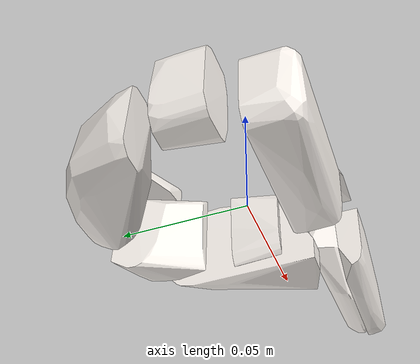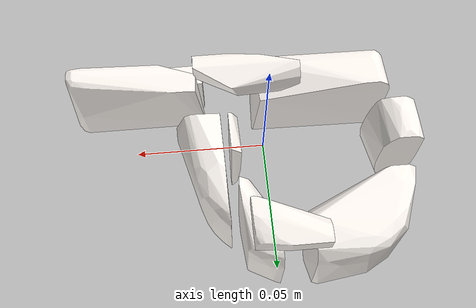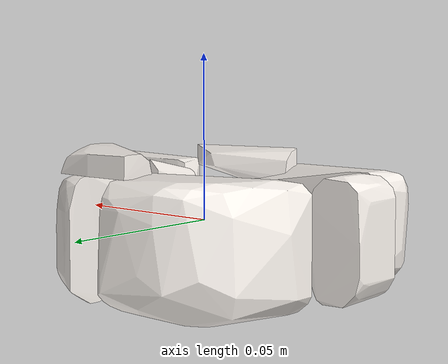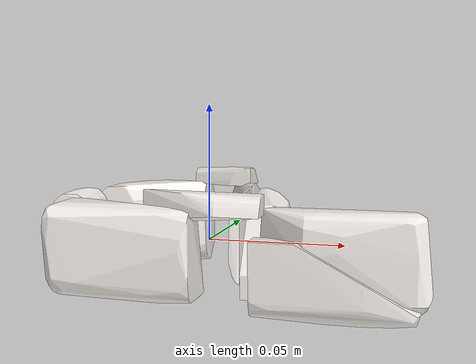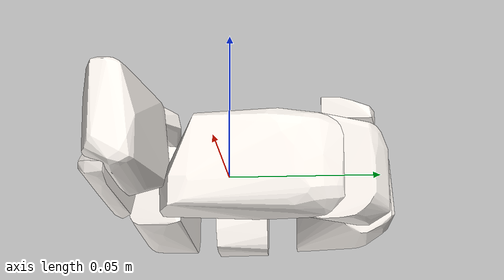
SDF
<?xml version='1.0' encoding='UTF-8'?>
<!-- This SDF was autogenerated by obj_to_drake_sdf.py -->
<sdf version="1.7">
  <model name="P_shape_texture">
    <link name="P_shape_texture">
      <inertial>
        <pose>0 0 0 0 0 0</pose>
        <mass>0.05</mass>
        <inertia>
          <ixx>5.5597613e-05</ixx>
          <iyy>7.860341e-05</iyy>
          <izz>0.00011751778</izz>
          <ixy>1.5313936e-05</ixy>
          <ixz>6.9669251e-07</ixz>
          <iyz>-8.0254896e-07</iyz>
        </inertia>
      </inertial>
      <visual name="convex_0">
        <pose>0 0 0 0 0 0</pose>
        <geometry>
          <mesh>
            <uri>P_shape_texture_convex_0.obj</uri>
          </mesh>
        </geometry>
        <material>
          <diffuse>0.9803921568627451 0.9568627450980393 0.9333333333333333 1</diffuse>
        </material>
      </visual>
      <collision name="convex_0_volume">
        <pose>0 0 0 0 0 0</pose>
        <geometry>
          <mesh>
            <uri>P_shape_texture_convex_0.obj</uri>
          </mesh>
        </geometry>
        <drake:proximity_properties xmlns:drake="uri:drake">
          <drake:compliant_hydroelastic/>
          <drake:hydroelastic_modulus> 3.0e7 </drake:hydroelastic_modulus>
          <drake:mesh_resolution_hint> 0.02 </drake:mesh_resolution_hint>
          <drake:hunt_crossley_dissipation>10</drake:hunt_crossley_dissipation>
          <drake:mu_dynamic>0.3</drake:mu_dynamic>
        </drake:proximity_properties>
      </collision>
      <visual name="convex_1">
        <pose>0 0 0 0 0 0</pose>
        <geometry>
          <mesh>
            <uri>P_shape_texture_convex_1.obj</uri>
          </mesh>
        </geometry>
        <material>
          <diffuse>0.9803921568627451 0.9568627450980393 0.9333333333333333 1</diffuse>
        </material>
      </visual>
      <collision name="convex_1_volume">
        <pose>0 0 0 0 0 0</pose>
        <geometry>
          <mesh>
            <uri>P_shape_texture_convex_1.obj</uri>
          </mesh>
        </geometry>
        <drake:proximity_properties xmlns:drake="uri:drake">
          <drake:compliant_hydroelastic/>
          <drake:hydroelastic_modulus> 3.0e7 </drake:hydroelastic_modulus>
          <drake:mesh_resolution_hint> 0.02 </drake:mesh_resolution_hint>
          <drake:hunt_crossley_dissipation>10</drake:hunt_crossley_dissipation>
          <drake:mu_dynamic>0.3</drake:mu_dynamic>
        </drake:proximity_properties>
      </collision>
      <visual name="convex_2">
        <pose>0 0 0 0 0 0</pose>
        <geometry>
          <mesh>
            <uri>P_shape_texture_convex_2.obj</uri>
          </mesh>
        </geometry>
        <material>
          <diffuse>0.9803921568627451 0.9568627450980393 0.9333333333333333 1</diffuse>
        </material>
      </visual>
      <collision name="convex_2_volume">
        <pose>0 0 0 0 0 0</pose>
        <geometry>
          <mesh>
            <uri>P_shape_texture_convex_2.obj</uri>
          </mesh>
        </geometry>
        <drake:proximity_properties xmlns:drake="uri:drake">
          <drake:compliant_hydroelastic/>
          <drake:hydroelastic_modulus> 3.0e7 </drake:hydroelastic_modulus>
          <drake:mesh_resolution_hint> 0.02 </drake:mesh_resolution_hint>
          <drake:hunt_crossley_dissipation>10</drake:hunt_crossley_dissipation>
          <drake:mu_dynamic>0.3</drake:mu_dynamic>
        </drake:proximity_properties>
      </collision>
      <visual name="convex_3">
        <pose>0 0 0 0 0 0</pose>
        <geometry>
          <mesh>
            <uri>P_shape_texture_convex_3.obj</uri>
          </mesh>
        </geometry>
        <material>
          <diffuse>0.9803921568627451 0.9568627450980393 0.9333333333333333 1</diffuse>
        </material>
      </visual>
      <collision name="convex_3_volume">
        <pose>0 0 0 0 0 0</pose>
        <geometry>
          <mesh>
            <uri>P_shape_texture_convex_3.obj</uri>
          </mesh>
        </geometry>
        <drake:proximity_properties xmlns:drake="uri:drake">
          <drake:compliant_hydroelastic/>
          <drake:hydroelastic_modulus> 3.0e7 </drake:hydroelastic_modulus>
          <drake:mesh_resolution_hint> 0.02 </drake:mesh_resolution_hint>
          <drake:hunt_crossley_dissipation>10</drake:hunt_crossley_dissipation>
          <drake:mu_dynamic>0.3</drake:mu_dynamic>
        </drake:proximity_properties>
      </collision>
      <visual name="convex_4">
        <pose>0 0 0 0 0 0</pose>
        <geometry>
          <mesh>
            <uri>P_shape_texture_convex_4.obj</uri>
          </mesh>
        </geometry>
        <material>
          <diffuse>0.9803921568627451 0.9568627450980393 0.9333333333333333 1</diffuse>
        </material>
      </visual>
      <collision name="convex_4_volume">
        <pose>0 0 0 0 0 0</pose>
        <geometry>
          <mesh>
            <uri>P_shape_texture_convex_4.obj</uri>
          </mesh>
        </geometry>
        <drake:proximity_properties xmlns:drake="uri:drake">
          <drake:compliant_hydroelastic/>
          <drake:hydroelastic_modulus> 3.0e7 </drake:hydroelastic_modulus>
          <drake:mesh_resolution_hint> 0.02 </drake:mesh_resolution_hint>
          <drake:hunt_crossley_dissipation>10</drake:hunt_crossley_dissipation>
          <drake:mu_dynamic>0.3</drake:mu_dynamic>
        </drake:proximity_properties>
      </collision>
      <visual name="convex_5">
        <pose>0 0 0 0 0 0</pose>
        <geometry>
          <mesh>
            <uri>P_shape_texture_convex_5.obj</uri>
          </mesh>
        </geometry>
        <material>
          <diffuse>0.9803921568627451 0.9568627450980393 0.9333333333333333 1</diffuse>
        </material>
      </visual>
      <collision name="convex_5_volume">
        <pose>0 0 0 0 0 0</pose>
        <geometry>
          <mesh>
            <uri>P_shape_texture_convex_5.obj</uri>
          </mesh>
        </geometry>
        <drake:proximity_properties xmlns:drake="uri:drake">
          <drake:compliant_hydroelastic/>
          <drake:hydroelastic_modulus> 3.0e7 </drake:hydroelastic_modulus>
          <drake:mesh_resolution_hint> 0.02 </drake:mesh_resolution_hint>
          <drake:hunt_crossley_dissipation>10</drake:hunt_crossley_dissipation>
          <drake:mu_dynamic>0.3</drake:mu_dynamic>
        </drake:proximity_properties>
      </collision>
      <visual name="convex_6">
        <pose>0 0 0 0 0 0</pose>
        <geometry>
          <mesh>
            <uri>P_shape_texture_convex_6.obj</uri>
          </mesh>
        </geometry>
        <material>
          <diffuse>0.9803921568627451 0.9568627450980393 0.9333333333333333 1</diffuse>
        </material>
      </visual>
      <collision name="convex_6_volume">
        <pose>0 0 0 0 0 0</pose>
        <geometry>
          <mesh>
            <uri>P_shape_texture_convex_6.obj</uri>
          </mesh>
        </geometry>
        <drake:proximity_properties xmlns:drake="uri:drake">
          <drake:compliant_hydroelastic/>
          <drake:hydroelastic_modulus> 3.0e7 </drake:hydroelastic_modulus>
          <drake:mesh_resolution_hint> 0.02 </drake:mesh_resolution_hint>
          <drake:hunt_crossley_dissipation>10</drake:hunt_crossley_dissipation>
          <drake:mu_dynamic>0.3</drake:mu_dynamic>
        </drake:proximity_properties>
      </collision>
      <visual name="convex_7">
        <pose>0 0 0 0 0 0</pose>
        <geometry>
          <mesh>
            <uri>P_shape_texture_convex_7.obj</uri>
          </mesh>
        </geometry>
        <material>
          <diffuse>0.9803921568627451 0.9568627450980393 0.9333333333333333 1</diffuse>
        </material>
      </visual>
      <collision name="convex_7_volume">
        <pose>0 0 0 0 0 0</pose>
        <geometry>
          <mesh>
            <uri>P_shape_texture_convex_7.obj</uri>
          </mesh>
        </geometry>
        <drake:proximity_properties xmlns:drake="uri:drake">
          <drake:compliant_hydroelastic/>
          <drake:hydroelastic_modulus> 3.0e7 </drake:hydroelastic_modulus>
          <drake:mesh_resolution_hint> 0.02 </drake:mesh_resolution_hint>
          <drake:hunt_crossley_dissipation>10</drake:hunt_crossley_dissipation>
          <drake:mu_dynamic>0.3</drake:mu_dynamic>
        </drake:proximity_properties>
      </collision>
      <visual name="convex_8">
        <pose>0 0 0 0 0 0</pose>
        <geometry>
          <mesh>
            <uri>P_shape_texture_convex_8.obj</uri>
          </mesh>
        </geometry>
        <material>
          <diffuse>0.9803921568627451 0.9568627450980393 0.9333333333333333 1</diffuse>
        </material>
      </visual>
      <collision name="convex_8_volume">
        <pose>0 0 0 0 0 0</pose>
        <geometry>
          <mesh>
            <uri>P_shape_texture_convex_8.obj</uri>
          </mesh>
        </geometry>
        <drake:proximity_properties xmlns:drake="uri:drake">
          <drake:compliant_hydroelastic/>
          <drake:hydroelastic_modulus> 3.0e7 </drake:hydroelastic_modulus>
          <drake:mesh_resolution_hint> 0.02 </drake:mesh_resolution_hint>
          <drake:hunt_crossley_dissipation>10</drake:hunt_crossley_dissipation>
          <drake:mu_dynamic>0.3</drake:mu_dynamic>
        </drake:proximity_properties>
      </collision>
      <visual name="convex_9">
        <pose>0 0 0 0 0 0</pose>
        <geometry>
          <mesh>
            <uri>P_shape_texture_convex_9.obj</uri>
          </mesh>
        </geometry>
        <material>
          <diffuse>0.9803921568627451 0.9568627450980393 0.9333333333333333 1</diffuse>
        </material>
      </visual>
      <collision name="convex_9_volume">
        <pose>0 0 0 0 0 0</pose>
        <geometry>
          <mesh>
            <uri>P_shape_texture_convex_9.obj</uri>
          </mesh>
        </geometry>
        <drake:proximity_properties xmlns:drake="uri:drake">
          <drake:compliant_hydroelastic/>
          <drake:hydroelastic_modulus> 3.0e7 </drake:hydroelastic_modulus>
          <drake:mesh_resolution_hint> 0.02 </drake:mesh_resolution_hint>
          <drake:hunt_crossley_dissipation>10</drake:hunt_crossley_dissipation>
          <drake:mu_dynamic>0.3</drake:mu_dynamic>
        </drake:proximity_properties>
      </collision>
    </link>
  </model>
</sdf>
